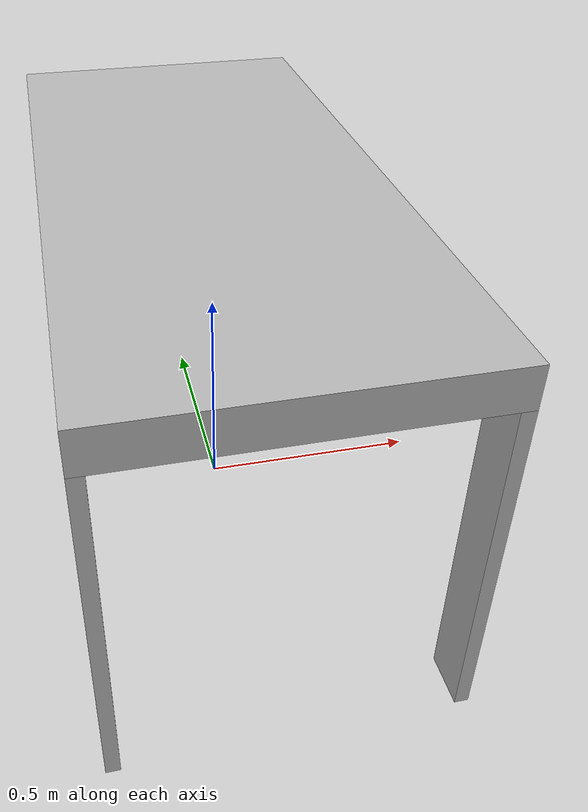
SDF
<?xml version="1.0" ?>
<sdf version="1.6">
  <model name="rwc2023/desk">
    <static>true</static>
    <link name="1_link">
      <collision name="1_col">
        <geometry>
          <box>
            <size>0.705 1.505 0.085</size>
          </box>
        </geometry>
      </collision>
      <visual name="1_vis">
        <geometry>
          <box>
            <size>0.705 1.505 0.085</size>
          </box>
        </geometry>
      </visual>
      <pose>0.0 0.0 0.7625 0 0 0</pose>
    </link>
    <link name="2_link">
      <collision name="2_col">
        <geometry>
          <box>
            <size>0.028 0.102 0.72</size>
          </box>
        </geometry>
      </collision>
      <visual name="2_vis">
        <geometry>
          <box>
            <size>0.028 0.102 0.72</size>
          </box>
        </geometry>
      </visual>
      <pose>-0.3385 -0.7015 0.36 0 0 0</pose>
    </link>
    <link name="3_link">
      <collision name="3_col">
        <geometry>
          <box>
            <size>0.028 0.102 0.72</size>
          </box>
        </geometry>
      </collision>
      <visual name="3_vis">
        <geometry>
          <box>
            <size>0.028 0.102 0.72</size>
          </box>
        </geometry>
      </visual>
      <pose>0.3385 -0.7015 0.36 0 0 0</pose>
    </link>
    <link name="4_link">
      <collision name="4_col">
        <geometry>
          <box>
            <size>0.028 0.102 0.72</size>
          </box>
        </geometry>
      </collision>
      <visual name="4_vis">
        <geometry>
          <box>
            <size>0.028 0.102 0.72</size>
          </box>
        </geometry>
      </visual>
      <pose>-0.3385 0.7015 0.36 0 0 0</pose>
    </link>
    <link name="5_link">
      <collision name="5_col">
        <geometry>
          <box>
            <size>0.028 0.102 0.72</size>
          </box>
        </geometry>
      </collision>
      <visual name="5_vis">
        <geometry>
          <box>
            <size>0.028 0.102 0.72</size>
          </box>
        </geometry>
      </visual>
      <pose>0.3385 0.7015 0.36 0 0 0</pose>
    </link>
    <link name="on_top_of">
      <virtual_volume name="on_top_of_vv">
        <geometry>
          <box>
            <size>0.685 1.445 0.25</size>
          </box>
        </geometry>
        <pose>0.0 0.0 0.95 0 0 0</pose>
      </virtual_volume>
    </link>
    <link name="in_front_of">
      <virtual_volume name="in_front_of_vv">
        <geometry>
          <box>
            <size>0.2 1.305 0.01</size>
          </box>
        </geometry>
        <pose>0.8525 0.0 0.005 0 0 0</pose>
      </virtual_volume>
    </link>
  </model>
</sdf>
